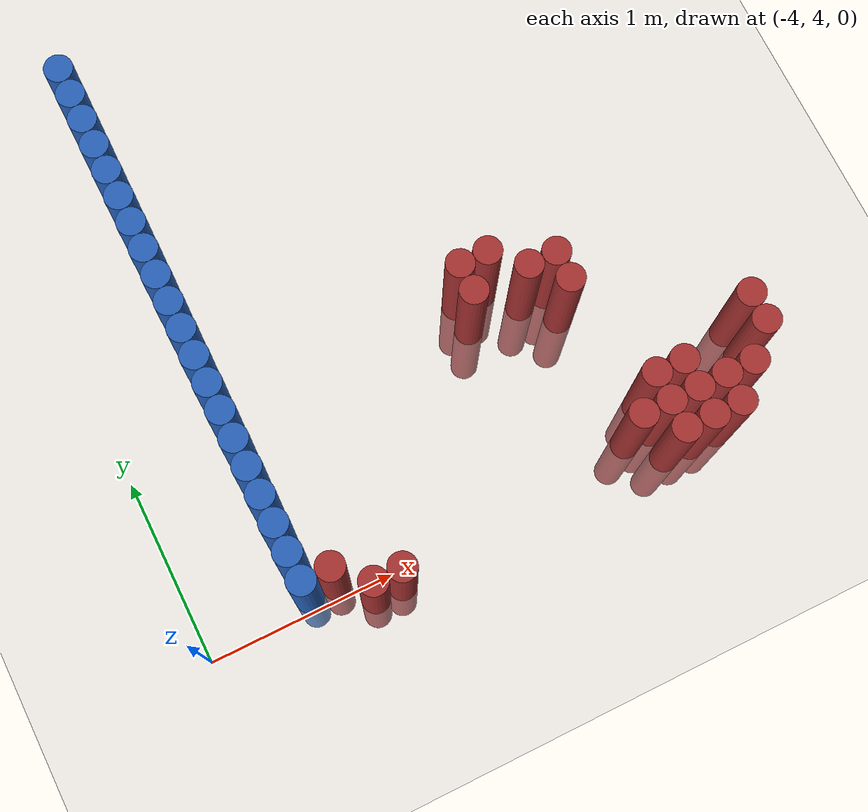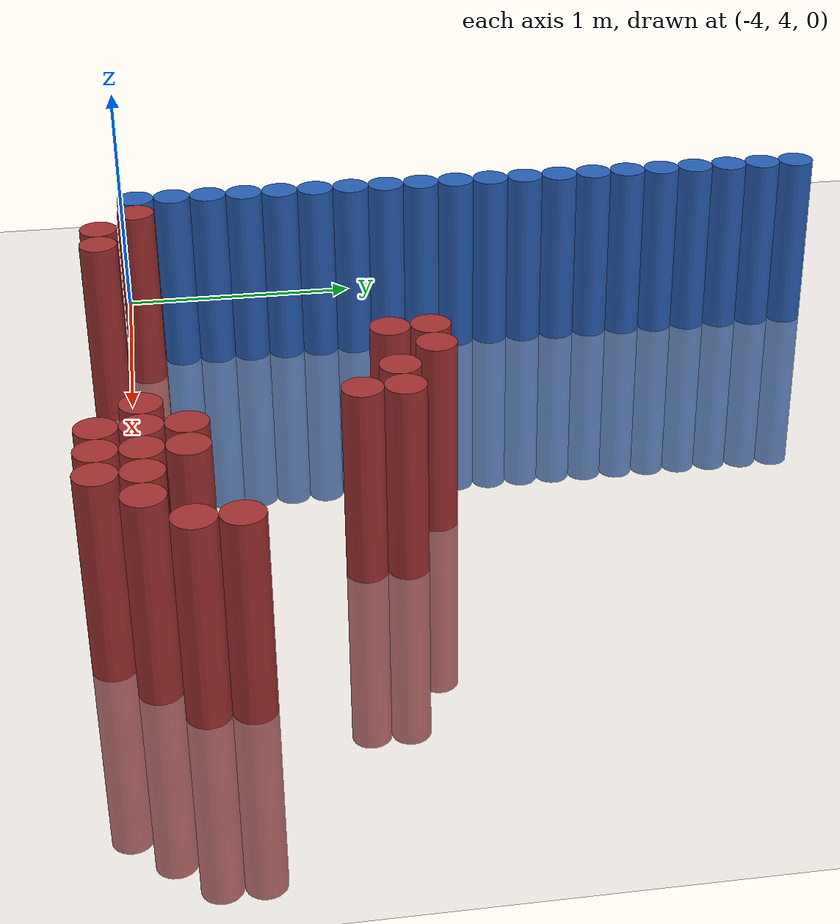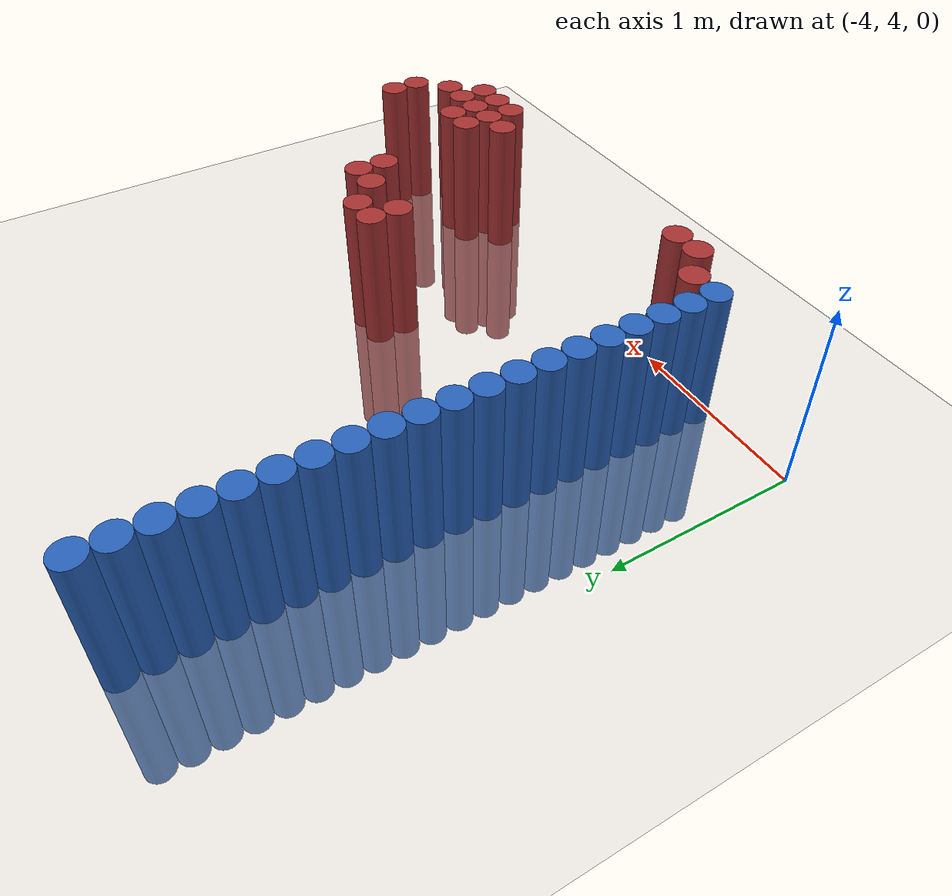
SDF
<sdf version="1.6">
 <world name="default">
  <model name="ground_plane">
   <static>1</static>
   <link name="link">
    <collision name="collision">
     <geometry><plane><normal>0 0 1</normal><size>100 100</size></plane></geometry>
     <surface><friction><ode><mu>100</mu><mu2>50</mu2></ode></friction></surface>
    </collision>
    <visual name="visual">
     <cast_shadows>0</cast_shadows>
     <geometry><plane><normal>0 0 1</normal><size>100 100</size></plane></geometry>
     <material>
      <script><uri>file://media/materials/scripts/gazebo.material</uri><name>Gazebo/Grey</name></script>
     </material>
    </visual>
   </link>
  </model>
  <model name="unit_cylinder_169">
   <static>1</static>
   <pose>-3.425000 4.075000 0.000000 0.000000 0.000000 0.000000</pose>
   <link name="link">
    <inertial>
     <mass>1</mass>
     <inertia><ixx>0.145833</ixx><ixy>0</ixy><ixz>0</ixz><iyy>0.145833</iyy><iyz>0</iyz><izz>0.125</izz></inertia>
    </inertial>
    <collision name="collision">
     <geometry><cylinder><radius>0.075000</radius><length>1.5</length></cylinder></geometry>
    </collision>
    <visual name="visual">
     <geometry><cylinder><radius>0.075000</radius><length>1.5</length></cylinder></geometry>
     <material>
      <ambient>0.152000 0.379000 0.720000 1</ambient>
      <diffuse>0.152000 0.379000 0.720000 1</diffuse>
     </material>
     <material>
      <script><name>Gazebo/Grey</name><uri>file://media/materials/scripts/gazebo.material</uri></script>
     </material>
    </visual>
   </link>
  </model>
  <model name="unit_cylinder_171">
   <static>1</static>
   <pose>-3.425000 4.225000 0.000000 0.000000 0.000000 0.000000</pose>
   <link name="link">
    <inertial>
     <mass>1</mass>
     <inertia><ixx>0.145833</ixx><ixy>0</ixy><ixz>0</ixz><iyy>0.145833</iyy><iyz>0</iyz><izz>0.125</izz></inertia>
    </inertial>
    <collision name="collision">
     <geometry><cylinder><radius>0.075000</radius><length>1.5</length></cylinder></geometry>
    </collision>
    <visual name="visual">
     <geometry><cylinder><radius>0.075000</radius><length>1.5</length></cylinder></geometry>
     <material>
      <ambient>0.152000 0.379000 0.720000 1</ambient>
      <diffuse>0.152000 0.379000 0.720000 1</diffuse>
     </material>
     <material>
      <script><name>Gazebo/Grey</name><uri>file://media/materials/scripts/gazebo.material</uri></script>
     </material>
    </visual>
   </link>
  </model>
  <model name="unit_cylinder_173">
   <static>1</static>
   <pose>-3.425000 4.375000 0.000000 0.000000 0.000000 0.000000</pose>
   <link name="link">
    <inertial>
     <mass>1</mass>
     <inertia><ixx>0.145833</ixx><ixy>0</ixy><ixz>0</ixz><iyy>0.145833</iyy><iyz>0</iyz><izz>0.125</izz></inertia>
    </inertial>
    <collision name="collision">
     <geometry><cylinder><radius>0.075000</radius><length>1.5</length></cylinder></geometry>
    </collision>
    <visual name="visual">
     <geometry><cylinder><radius>0.075000</radius><length>1.5</length></cylinder></geometry>
     <material>
      <ambient>0.152000 0.379000 0.720000 1</ambient>
      <diffuse>0.152000 0.379000 0.720000 1</diffuse>
     </material>
     <material>
      <script><name>Gazebo/Grey</name><uri>file://media/materials/scripts/gazebo.material</uri></script>
     </material>
    </visual>
   </link>
  </model>
  <model name="unit_cylinder_175">
   <static>1</static>
   <pose>-3.425000 4.525000 0.000000 0.000000 0.000000 0.000000</pose>
   <link name="link">
    <inertial>
     <mass>1</mass>
     <inertia><ixx>0.145833</ixx><ixy>0</ixy><ixz>0</ixz><iyy>0.145833</iyy><iyz>0</iyz><izz>0.125</izz></inertia>
    </inertial>
    <collision name="collision">
     <geometry><cylinder><radius>0.075000</radius><length>1.5</length></cylinder></geometry>
    </collision>
    <visual name="visual">
     <geometry><cylinder><radius>0.075000</radius><length>1.5</length></cylinder></geometry>
     <material>
      <ambient>0.152000 0.379000 0.720000 1</ambient>
      <diffuse>0.152000 0.379000 0.720000 1</diffuse>
     </material>
     <material>
      <script><name>Gazebo/Grey</name><uri>file://media/materials/scripts/gazebo.material</uri></script>
     </material>
    </visual>
   </link>
  </model>
  <model name="unit_cylinder_177">
   <static>1</static>
   <pose>-3.425000 4.675000 0.000000 0.000000 0.000000 0.000000</pose>
   <link name="link">
    <inertial>
     <mass>1</mass>
     <inertia><ixx>0.145833</ixx><ixy>0</ixy><ixz>0</ixz><iyy>0.145833</iyy><iyz>0</iyz><izz>0.125</izz></inertia>
    </inertial>
    <collision name="collision">
     <geometry><cylinder><radius>0.075000</radius><length>1.5</length></cylinder></geometry>
    </collision>
    <visual name="visual">
     <geometry><cylinder><radius>0.075000</radius><length>1.5</length></cylinder></geometry>
     <material>
      <ambient>0.152000 0.379000 0.720000 1</ambient>
      <diffuse>0.152000 0.379000 0.720000 1</diffuse>
     </material>
     <material>
      <script><name>Gazebo/Grey</name><uri>file://media/materials/scripts/gazebo.material</uri></script>
     </material>
    </visual>
   </link>
  </model>
  <model name="unit_cylinder_179">
   <static>1</static>
   <pose>-3.425000 4.825000 0.000000 0.000000 0.000000 0.000000</pose>
   <link name="link">
    <inertial>
     <mass>1</mass>
     <inertia><ixx>0.145833</ixx><ixy>0</ixy><ixz>0</ixz><iyy>0.145833</iyy><iyz>0</iyz><izz>0.125</izz></inertia>
    </inertial>
    <collision name="collision">
     <geometry><cylinder><radius>0.075000</radius><length>1.5</length></cylinder></geometry>
    </collision>
    <visual name="visual">
     <geometry><cylinder><radius>0.075000</radius><length>1.5</length></cylinder></geometry>
     <material>
      <ambient>0.152000 0.379000 0.720000 1</ambient>
      <diffuse>0.152000 0.379000 0.720000 1</diffuse>
     </material>
     <material>
      <script><name>Gazebo/Grey</name><uri>file://media/materials/scripts/gazebo.material</uri></script>
     </material>
    </visual>
   </link>
  </model>
  <model name="unit_cylinder_181">
   <static>1</static>
   <pose>-3.425000 4.975000 0.000000 0.000000 0.000000 0.000000</pose>
   <link name="link">
    <inertial>
     <mass>1</mass>
     <inertia><ixx>0.145833</ixx><ixy>0</ixy><ixz>0</ixz><iyy>0.145833</iyy><iyz>0</iyz><izz>0.125</izz></inertia>
    </inertial>
    <collision name="collision">
     <geometry><cylinder><radius>0.075000</radius><length>1.5</length></cylinder></geometry>
    </collision>
    <visual name="visual">
     <geometry><cylinder><radius>0.075000</radius><length>1.5</length></cylinder></geometry>
     <material>
      <ambient>0.152000 0.379000 0.720000 1</ambient>
      <diffuse>0.152000 0.379000 0.720000 1</diffuse>
     </material>
     <material>
      <script><name>Gazebo/Grey</name><uri>file://media/materials/scripts/gazebo.material</uri></script>
     </material>
    </visual>
   </link>
  </model>
  <model name="unit_cylinder_183">
   <static>1</static>
   <pose>-3.425000 5.125000 0.000000 0.000000 0.000000 0.000000</pose>
   <link name="link">
    <inertial>
     <mass>1</mass>
     <inertia><ixx>0.145833</ixx><ixy>0</ixy><ixz>0</ixz><iyy>0.145833</iyy><iyz>0</iyz><izz>0.125</izz></inertia>
    </inertial>
    <collision name="collision">
     <geometry><cylinder><radius>0.075000</radius><length>1.5</length></cylinder></geometry>
    </collision>
    <visual name="visual">
     <geometry><cylinder><radius>0.075000</radius><length>1.5</length></cylinder></geometry>
     <material>
      <ambient>0.152000 0.379000 0.720000 1</ambient>
      <diffuse>0.152000 0.379000 0.720000 1</diffuse>
     </material>
     <material>
      <script><name>Gazebo/Grey</name><uri>file://media/materials/scripts/gazebo.material</uri></script>
     </material>
    </visual>
   </link>
  </model>
  <model name="unit_cylinder_185">
   <static>1</static>
   <pose>-3.425000 5.275000 0.000000 0.000000 0.000000 0.000000</pose>
   <link name="link">
    <inertial>
     <mass>1</mass>
     <inertia><ixx>0.145833</ixx><ixy>0</ixy><ixz>0</ixz><iyy>0.145833</iyy><iyz>0</iyz><izz>0.125</izz></inertia>
    </inertial>
    <collision name="collision">
     <geometry><cylinder><radius>0.075000</radius><length>1.5</length></cylinder></geometry>
    </collision>
    <visual name="visual">
     <geometry><cylinder><radius>0.075000</radius><length>1.5</length></cylinder></geometry>
     <material>
      <ambient>0.152000 0.379000 0.720000 1</ambient>
      <diffuse>0.152000 0.379000 0.720000 1</diffuse>
     </material>
     <material>
      <script><name>Gazebo/Grey</name><uri>file://media/materials/scripts/gazebo.material</uri></script>
     </material>
    </visual>
   </link>
  </model>
  <model name="unit_cylinder_187">
   <static>1</static>
   <pose>-3.425000 5.425000 0.000000 0.000000 0.000000 0.000000</pose>
   <link name="link">
    <inertial>
     <mass>1</mass>
     <inertia><ixx>0.145833</ixx><ixy>0</ixy><ixz>0</ixz><iyy>0.145833</iyy><iyz>0</iyz><izz>0.125</izz></inertia>
    </inertial>
    <collision name="collision">
     <geometry><cylinder><radius>0.075000</radius><length>1.5</length></cylinder></geometry>
    </collision>
    <visual name="visual">
     <geometry><cylinder><radius>0.075000</radius><length>1.5</length></cylinder></geometry>
     <material>
      <ambient>0.152000 0.379000 0.720000 1</ambient>
      <diffuse>0.152000 0.379000 0.720000 1</diffuse>
     </material>
     <material>
      <script><name>Gazebo/Grey</name><uri>file://media/materials/scripts/gazebo.material</uri></script>
     </material>
    </visual>
   </link>
  </model>
  <model name="unit_cylinder_189">
   <static>1</static>
   <pose>-3.425000 5.575000 0.000000 0.000000 0.000000 0.000000</pose>
   <link name="link">
    <inertial>
     <mass>1</mass>
     <inertia><ixx>0.145833</ixx><ixy>0</ixy><ixz>0</ixz><iyy>0.145833</iyy><iyz>0</iyz><izz>0.125</izz></inertia>
    </inertial>
    <collision name="collision">
     <geometry><cylinder><radius>0.075000</radius><length>1.5</length></cylinder></geometry>
    </collision>
    <visual name="visual">
     <geometry><cylinder><radius>0.075000</radius><length>1.5</length></cylinder></geometry>
     <material>
      <ambient>0.152000 0.379000 0.720000 1</ambient>
      <diffuse>0.152000 0.379000 0.720000 1</diffuse>
     </material>
     <material>
      <script><name>Gazebo/Grey</name><uri>file://media/materials/scripts/gazebo.material</uri></script>
     </material>
    </visual>
   </link>
  </model>
  <model name="unit_cylinder_191">
   <static>1</static>
   <pose>-3.425000 5.725000 0.000000 0.000000 0.000000 0.000000</pose>
   <link name="link">
    <inertial>
     <mass>1</mass>
     <inertia><ixx>0.145833</ixx><ixy>0</ixy><ixz>0</ixz><iyy>0.145833</iyy><iyz>0</iyz><izz>0.125</izz></inertia>
    </inertial>
    <collision name="collision">
     <geometry><cylinder><radius>0.075000</radius><length>1.5</length></cylinder></geometry>
    </collision>
    <visual name="visual">
     <geometry><cylinder><radius>0.075000</radius><length>1.5</length></cylinder></geometry>
     <material>
      <ambient>0.152000 0.379000 0.720000 1</ambient>
      <diffuse>0.152000 0.379000 0.720000 1</diffuse>
     </material>
     <material>
      <script><name>Gazebo/Grey</name><uri>file://media/materials/scripts/gazebo.material</uri></script>
     </material>
    </visual>
   </link>
  </model>
  <model name="unit_cylinder_193">
   <static>1</static>
   <pose>-3.425000 5.875000 0.000000 0.000000 0.000000 0.000000</pose>
   <link name="link">
    <inertial>
     <mass>1</mass>
     <inertia><ixx>0.145833</ixx><ixy>0</ixy><ixz>0</ixz><iyy>0.145833</iyy><iyz>0</iyz><izz>0.125</izz></inertia>
    </inertial>
    <collision name="collision">
     <geometry><cylinder><radius>0.075000</radius><length>1.5</length></cylinder></geometry>
    </collision>
    <visual name="visual">
     <geometry><cylinder><radius>0.075000</radius><length>1.5</length></cylinder></geometry>
     <material>
      <ambient>0.152000 0.379000 0.720000 1</ambient>
      <diffuse>0.152000 0.379000 0.720000 1</diffuse>
     </material>
     <material>
      <script><name>Gazebo/Grey</name><uri>file://media/materials/scripts/gazebo.material</uri></script>
     </material>
    </visual>
   </link>
  </model>
  <model name="unit_cylinder_195">
   <static>1</static>
   <pose>-3.425000 6.025000 0.000000 0.000000 0.000000 0.000000</pose>
   <link name="link">
    <inertial>
     <mass>1</mass>
     <inertia><ixx>0.145833</ixx><ixy>0</ixy><ixz>0</ixz><iyy>0.145833</iyy><iyz>0</iyz><izz>0.125</izz></inertia>
    </inertial>
    <collision name="collision">
     <geometry><cylinder><radius>0.075000</radius><length>1.5</length></cylinder></geometry>
    </collision>
    <visual name="visual">
     <geometry><cylinder><radius>0.075000</radius><length>1.5</length></cylinder></geometry>
     <material>
      <ambient>0.152000 0.379000 0.720000 1</ambient>
      <diffuse>0.152000 0.379000 0.720000 1</diffuse>
     </material>
     <material>
      <script><name>Gazebo/Grey</name><uri>file://media/materials/scripts/gazebo.material</uri></script>
     </material>
    </visual>
   </link>
  </model>
  <model name="unit_cylinder_197">
   <static>1</static>
   <pose>-3.425000 6.175000 0.000000 0.000000 0.000000 0.000000</pose>
   <link name="link">
    <inertial>
     <mass>1</mass>
     <inertia><ixx>0.145833</ixx><ixy>0</ixy><ixz>0</ixz><iyy>0.145833</iyy><iyz>0</iyz><izz>0.125</izz></inertia>
    </inertial>
    <collision name="collision">
     <geometry><cylinder><radius>0.075000</radius><length>1.5</length></cylinder></geometry>
    </collision>
    <visual name="visual">
     <geometry><cylinder><radius>0.075000</radius><length>1.5</length></cylinder></geometry>
     <material>
      <ambient>0.152000 0.379000 0.720000 1</ambient>
      <diffuse>0.152000 0.379000 0.720000 1</diffuse>
     </material>
     <material>
      <script><name>Gazebo/Grey</name><uri>file://media/materials/scripts/gazebo.material</uri></script>
     </material>
    </visual>
   </link>
  </model>
  <model name="unit_cylinder_199">
   <static>1</static>
   <pose>-3.425000 6.325000 0.000000 0.000000 0.000000 0.000000</pose>
   <link name="link">
    <inertial>
     <mass>1</mass>
     <inertia><ixx>0.145833</ixx><ixy>0</ixy><ixz>0</ixz><iyy>0.145833</iyy><iyz>0</iyz><izz>0.125</izz></inertia>
    </inertial>
    <collision name="collision">
     <geometry><cylinder><radius>0.075000</radius><length>1.5</length></cylinder></geometry>
    </collision>
    <visual name="visual">
     <geometry><cylinder><radius>0.075000</radius><length>1.5</length></cylinder></geometry>
     <material>
      <ambient>0.152000 0.379000 0.720000 1</ambient>
      <diffuse>0.152000 0.379000 0.720000 1</diffuse>
     </material>
     <material>
      <script><name>Gazebo/Grey</name><uri>file://media/materials/scripts/gazebo.material</uri></script>
     </material>
    </visual>
   </link>
  </model>
  <model name="unit_cylinder_201">
   <static>1</static>
   <pose>-3.425000 6.475000 0.000000 0.000000 0.000000 0.000000</pose>
   <link name="link">
    <inertial>
     <mass>1</mass>
     <inertia><ixx>0.145833</ixx><ixy>0</ixy><ixz>0</ixz><iyy>0.145833</iyy><iyz>0</iyz><izz>0.125</izz></inertia>
    </inertial>
    <collision name="collision">
     <geometry><cylinder><radius>0.075000</radius><length>1.5</length></cylinder></geometry>
    </collision>
    <visual name="visual">
     <geometry><cylinder><radius>0.075000</radius><length>1.5</length></cylinder></geometry>
     <material>
      <ambient>0.152000 0.379000 0.720000 1</ambient>
      <diffuse>0.152000 0.379000 0.720000 1</diffuse>
     </material>
     <material>
      <script><name>Gazebo/Grey</name><uri>file://media/materials/scripts/gazebo.material</uri></script>
     </material>
    </visual>
   </link>
  </model>
  <model name="unit_cylinder_203">
   <static>1</static>
   <pose>-3.425000 6.625000 0.000000 0.000000 0.000000 0.000000</pose>
   <link name="link">
    <inertial>
     <mass>1</mass>
     <inertia><ixx>0.145833</ixx><ixy>0</ixy><ixz>0</ixz><iyy>0.145833</iyy><iyz>0</iyz><izz>0.125</izz></inertia>
    </inertial>
    <collision name="collision">
     <geometry><cylinder><radius>0.075000</radius><length>1.5</length></cylinder></geometry>
    </collision>
    <visual name="visual">
     <geometry><cylinder><radius>0.075000</radius><length>1.5</length></cylinder></geometry>
     <material>
      <ambient>0.152000 0.379000 0.720000 1</ambient>
      <diffuse>0.152000 0.379000 0.720000 1</diffuse>
     </material>
     <material>
      <script><name>Gazebo/Grey</name><uri>file://media/materials/scripts/gazebo.material</uri></script>
     </material>
    </visual>
   </link>
  </model>
  <model name="unit_cylinder_205">
   <static>1</static>
   <pose>-3.425000 6.775000 0.000000 0.000000 0.000000 0.000000</pose>
   <link name="link">
    <inertial>
     <mass>1</mass>
     <inertia><ixx>0.145833</ixx><ixy>0</ixy><ixz>0</ixz><iyy>0.145833</iyy><iyz>0</iyz><izz>0.125</izz></inertia>
    </inertial>
    <collision name="collision">
     <geometry><cylinder><radius>0.075000</radius><length>1.5</length></cylinder></geometry>
    </collision>
    <visual name="visual">
     <geometry><cylinder><radius>0.075000</radius><length>1.5</length></cylinder></geometry>
     <material>
      <ambient>0.152000 0.379000 0.720000 1</ambient>
      <diffuse>0.152000 0.379000 0.720000 1</diffuse>
     </material>
     <material>
      <script><name>Gazebo/Grey</name><uri>file://media/materials/scripts/gazebo.material</uri></script>
     </material>
    </visual>
   </link>
  </model>
  <model name="unit_cylinder_207">
   <static>1</static>
   <pose>-3.425000 6.925000 0.000000 0.000000 0.000000 0.000000</pose>
   <link name="link">
    <inertial>
     <mass>1</mass>
     <inertia><ixx>0.145833</ixx><ixy>0</ixy><ixz>0</ixz><iyy>0.145833</iyy><iyz>0</iyz><izz>0.125</izz></inertia>
    </inertial>
    <collision name="collision">
     <geometry><cylinder><radius>0.075000</radius><length>1.5</length></cylinder></geometry>
    </collision>
    <visual name="visual">
     <geometry><cylinder><radius>0.075000</radius><length>1.5</length></cylinder></geometry>
     <material>
      <ambient>0.152000 0.379000 0.720000 1</ambient>
      <diffuse>0.152000 0.379000 0.720000 1</diffuse>
     </material>
     <material>
      <script><name>Gazebo/Grey</name><uri>file://media/materials/scripts/gazebo.material</uri></script>
     </material>
    </visual>
   </link>
  </model>
  <model name="unit_cylinder_248">
   <static>1</static>
   <pose>-3.425000 4.075000 0.000000 0.000000 0.000000 0.000000</pose>
   <link name="link">
    <inertial>
     <mass>1</mass>
     <inertia><ixx>0.145833</ixx><ixy>0</ixy><ixz>0</ixz><iyy>0.145833</iyy><iyz>0</iyz><izz>0.125</izz></inertia>
    </inertial>
    <collision name="collision">
     <geometry><cylinder><radius>0.075000</radius><length>1.5</length></cylinder></geometry>
    </collision>
    <visual name="visual">
     <geometry><cylinder><radius>0.075000</radius><length>1.5</length></cylinder></geometry>
     <material>
      <ambient>0.152000 0.379000 0.720000 1</ambient>
      <diffuse>0.152000 0.379000 0.720000 1</diffuse>
     </material>
     <material>
      <script><name>Gazebo/Grey</name><uri>file://media/materials/scripts/gazebo.material</uri></script>
     </material>
    </visual>
   </link>
  </model>
  <model name="unit_cylinder_249">
   <static>1</static>
   <pose>-3.425000 4.225000 0.000000 0.000000 0.000000 0.000000</pose>
   <link name="link">
    <inertial>
     <mass>1</mass>
     <inertia><ixx>0.145833</ixx><ixy>0</ixy><ixz>0</ixz><iyy>0.145833</iyy><iyz>0</iyz><izz>0.125</izz></inertia>
    </inertial>
    <collision name="collision">
     <geometry><cylinder><radius>0.075000</radius><length>1.5</length></cylinder></geometry>
    </collision>
    <visual name="visual">
     <geometry><cylinder><radius>0.075000</radius><length>1.5</length></cylinder></geometry>
     <material>
      <ambient>0.152000 0.379000 0.720000 1</ambient>
      <diffuse>0.152000 0.379000 0.720000 1</diffuse>
     </material>
     <material>
      <script><name>Gazebo/Grey</name><uri>file://media/materials/scripts/gazebo.material</uri></script>
     </material>
    </visual>
   </link>
  </model>
  <model name="unit_cylinder_250">
   <static>1</static>
   <pose>-3.425000 4.375000 0.000000 0.000000 0.000000 0.000000</pose>
   <link name="link">
    <inertial>
     <mass>1</mass>
     <inertia><ixx>0.145833</ixx><ixy>0</ixy><ixz>0</ixz><iyy>0.145833</iyy><iyz>0</iyz><izz>0.125</izz></inertia>
    </inertial>
    <collision name="collision">
     <geometry><cylinder><radius>0.075000</radius><length>1.5</length></cylinder></geometry>
    </collision>
    <visual name="visual">
     <geometry><cylinder><radius>0.075000</radius><length>1.5</length></cylinder></geometry>
     <material>
      <ambient>0.152000 0.379000 0.720000 1</ambient>
      <diffuse>0.152000 0.379000 0.720000 1</diffuse>
     </material>
     <material>
      <script><name>Gazebo/Grey</name><uri>file://media/materials/scripts/gazebo.material</uri></script>
     </material>
    </visual>
   </link>
  </model>
  <model name="unit_cylinder_251">
   <static>1</static>
   <pose>-3.425000 4.525000 0.000000 0.000000 0.000000 0.000000</pose>
   <link name="link">
    <inertial>
     <mass>1</mass>
     <inertia><ixx>0.145833</ixx><ixy>0</ixy><ixz>0</ixz><iyy>0.145833</iyy><iyz>0</iyz><izz>0.125</izz></inertia>
    </inertial>
    <collision name="collision">
     <geometry><cylinder><radius>0.075000</radius><length>1.5</length></cylinder></geometry>
    </collision>
    <visual name="visual">
     <geometry><cylinder><radius>0.075000</radius><length>1.5</length></cylinder></geometry>
     <material>
      <ambient>0.152000 0.379000 0.720000 1</ambient>
      <diffuse>0.152000 0.379000 0.720000 1</diffuse>
     </material>
     <material>
      <script><name>Gazebo/Grey</name><uri>file://media/materials/scripts/gazebo.material</uri></script>
     </material>
    </visual>
   </link>
  </model>
  <model name="unit_cylinder_252">
   <static>1</static>
   <pose>-3.425000 4.675000 0.000000 0.000000 0.000000 0.000000</pose>
   <link name="link">
    <inertial>
     <mass>1</mass>
     <inertia><ixx>0.145833</ixx><ixy>0</ixy><ixz>0</ixz><iyy>0.145833</iyy><iyz>0</iyz><izz>0.125</izz></inertia>
    </inertial>
    <collision name="collision">
     <geometry><cylinder><radius>0.075000</radius><length>1.5</length></cylinder></geometry>
    </collision>
    <visual name="visual">
     <geometry><cylinder><radius>0.075000</radius><length>1.5</length></cylinder></geometry>
     <material>
      <ambient>0.152000 0.379000 0.720000 1</ambient>
      <diffuse>0.152000 0.379000 0.720000 1</diffuse>
     </material>
     <material>
      <script><name>Gazebo/Grey</name><uri>file://media/materials/scripts/gazebo.material</uri></script>
     </material>
    </visual>
   </link>
  </model>
  <model name="unit_cylinder_253">
   <static>1</static>
   <pose>-3.425000 4.825000 0.000000 0.000000 0.000000 0.000000</pose>
   <link name="link">
    <inertial>
     <mass>1</mass>
     <inertia><ixx>0.145833</ixx><ixy>0</ixy><ixz>0</ixz><iyy>0.145833</iyy><iyz>0</iyz><izz>0.125</izz></inertia>
    </inertial>
    <collision name="collision">
     <geometry><cylinder><radius>0.075000</radius><length>1.5</length></cylinder></geometry>
    </collision>
    <visual name="visual">
     <geometry><cylinder><radius>0.075000</radius><length>1.5</length></cylinder></geometry>
     <material>
      <ambient>0.152000 0.379000 0.720000 1</ambient>
      <diffuse>0.152000 0.379000 0.720000 1</diffuse>
     </material>
     <material>
      <script><name>Gazebo/Grey</name><uri>file://media/materials/scripts/gazebo.material</uri></script>
     </material>
    </visual>
   </link>
  </model>
  <model name="unit_cylinder_254">
   <static>1</static>
   <pose>-3.425000 4.975000 0.000000 0.000000 0.000000 0.000000</pose>
   <link name="link">
    <inertial>
     <mass>1</mass>
     <inertia><ixx>0.145833</ixx><ixy>0</ixy><ixz>0</ixz><iyy>0.145833</iyy><iyz>0</iyz><izz>0.125</izz></inertia>
    </inertial>
    <collision name="collision">
     <geometry><cylinder><radius>0.075000</radius><length>1.5</length></cylinder></geometry>
    </collision>
    <visual name="visual">
     <geometry><cylinder><radius>0.075000</radius><length>1.5</length></cylinder></geometry>
     <material>
      <ambient>0.152000 0.379000 0.720000 1</ambient>
      <diffuse>0.152000 0.379000 0.720000 1</diffuse>
     </material>
     <material>
      <script><name>Gazebo/Grey</name><uri>file://media/materials/scripts/gazebo.material</uri></script>
     </material>
    </visual>
   </link>
  </model>
  <model name="unit_cylinder_255">
   <static>1</static>
   <pose>-3.425000 5.125000 0.000000 0.000000 0.000000 0.000000</pose>
   <link name="link">
    <inertial>
     <mass>1</mass>
     <inertia><ixx>0.145833</ixx><ixy>0</ixy><ixz>0</ixz><iyy>0.145833</iyy><iyz>0</iyz><izz>0.125</izz></inertia>
    </inertial>
    <collision name="collision">
     <geometry><cylinder><radius>0.075000</radius><length>1.5</length></cylinder></geometry>
    </collision>
    <visual name="visual">
     <geometry><cylinder><radius>0.075000</radius><length>1.5</length></cylinder></geometry>
     <material>
      <ambient>0.152000 0.379000 0.720000 1</ambient>
      <diffuse>0.152000 0.379000 0.720000 1</diffuse>
     </material>
     <material>
      <script><name>Gazebo/Grey</name><uri>file://media/materials/scripts/gazebo.material</uri></script>
     </material>
    </visual>
   </link>
  </model>
  <model name="unit_cylinder_256">
   <static>1</static>
   <pose>-3.425000 5.275000 0.000000 0.000000 0.000000 0.000000</pose>
   <link name="link">
    <inertial>
     <mass>1</mass>
     <inertia><ixx>0.145833</ixx><ixy>0</ixy><ixz>0</ixz><iyy>0.145833</iyy><iyz>0</iyz><izz>0.125</izz></inertia>
    </inertial>
    <collision name="collision">
     <geometry><cylinder><radius>0.075000</radius><length>1.5</length></cylinder></geometry>
    </collision>
    <visual name="visual">
     <geometry><cylinder><radius>0.075000</radius><length>1.5</length></cylinder></geometry>
     <material>
      <ambient>0.152000 0.379000 0.720000 1</ambient>
      <diffuse>0.152000 0.379000 0.720000 1</diffuse>
     </material>
     <material>
      <script><name>Gazebo/Grey</name><uri>file://media/materials/scripts/gazebo.material</uri></script>
     </material>
    </visual>
   </link>
  </model>
  <model name="unit_cylinder_257">
   <static>1</static>
   <pose>-3.425000 5.425000 0.000000 0.000000 0.000000 0.000000</pose>
   <link name="link">
    <inertial>
     <mass>1</mass>
     <inertia><ixx>0.145833</ixx><ixy>0</ixy><ixz>0</ixz><iyy>0.145833</iyy><iyz>0</iyz><izz>0.125</izz></inertia>
    </inertial>
    <collision name="collision">
     <geometry><cylinder><radius>0.075000</radius><length>1.5</length></cylinder></geometry>
    </collision>
    <visual name="visual">
     <geometry><cylinder><radius>0.075000</radius><length>1.5</length></cylinder></geometry>
     <material>
      <ambient>0.152000 0.379000 0.720000 1</ambient>
      <diffuse>0.152000 0.379000 0.720000 1</diffuse>
     </material>
     <material>
      <script><name>Gazebo/Grey</name><uri>file://media/materials/scripts/gazebo.material</uri></script>
     </material>
    </visual>
   </link>
  </model>
  <model name="unit_cylinder_281">
   <static>1</static>
   <pose>-3.275000 4.075000 0.000000 0.000000 0.000000 0.000000</pose>
   <link name="link">
    <inertial>
     <mass>1</mass>
     <inertia><ixx>0.145833</ixx><ixy>0</ixy><ixz>0</ixz><iyy>0.145833</iyy><iyz>0</iyz><izz>0.125</izz></inertia>
    </inertial>
    <collision name="collision">
     <geometry><cylinder><radius>0.075000</radius><length>1.5</length></cylinder></geometry>
    </collision>
    <visual name="visual">
     <geometry><cylinder><radius>0.075000</radius><length>1.5</length></cylinder></geometry>
     <material>
      <ambient>0.648000 0.192000 0.192000 1</ambient>
      <diffuse>0.648000 0.192000 0.192000 1</diffuse>
     </material>
     <material>
      <script><name>Gazebo/Grey</name><uri>file://media/materials/scripts/gazebo.material</uri></script>
     </material>
    </visual>
   </link>
  </model>
  <model name="unit_cylinder_291">
   <static>1</static>
   <pose>-3.125000 3.925000 0.000000 0.000000 0.000000 0.000000</pose>
   <link name="link">
    <inertial>
     <mass>1</mass>
     <inertia><ixx>0.145833</ixx><ixy>0</ixy><ixz>0</ixz><iyy>0.145833</iyy><iyz>0</iyz><izz>0.125</izz></inertia>
    </inertial>
    <collision name="collision">
     <geometry><cylinder><radius>0.075000</radius><length>1.5</length></cylinder></geometry>
    </collision>
    <visual name="visual">
     <geometry><cylinder><radius>0.075000</radius><length>1.5</length></cylinder></geometry>
     <material>
      <ambient>0.648000 0.192000 0.192000 1</ambient>
      <diffuse>0.648000 0.192000 0.192000 1</diffuse>
     </material>
     <material>
      <script><name>Gazebo/Grey</name><uri>file://media/materials/scripts/gazebo.material</uri></script>
     </material>
    </visual>
   </link>
  </model>
  <model name="unit_cylinder_299">
   <static>1</static>
   <pose>-2.975000 3.925000 0.000000 0.000000 0.000000 0.000000</pose>
   <link name="link">
    <inertial>
     <mass>1</mass>
     <inertia><ixx>0.145833</ixx><ixy>0</ixy><ixz>0</ixz><iyy>0.145833</iyy><iyz>0</iyz><izz>0.125</izz></inertia>
    </inertial>
    <collision name="collision">
     <geometry><cylinder><radius>0.075000</radius><length>1.5</length></cylinder></geometry>
    </collision>
    <visual name="visual">
     <geometry><cylinder><radius>0.075000</radius><length>1.5</length></cylinder></geometry>
     <material>
      <ambient>0.648000 0.192000 0.192000 1</ambient>
      <diffuse>0.648000 0.192000 0.192000 1</diffuse>
     </material>
     <material>
      <script><name>Gazebo/Grey</name><uri>file://media/materials/scripts/gazebo.material</uri></script>
     </material>
    </visual>
   </link>
  </model>
  <model name="unit_cylinder_335">
   <static>1</static>
   <pose>-2.075000 4.975000 0.000000 0.000000 0.000000 0.000000</pose>
   <link name="link">
    <inertial>
     <mass>1</mass>
     <inertia><ixx>0.145833</ixx><ixy>0</ixy><ixz>0</ixz><iyy>0.145833</iyy><iyz>0</iyz><izz>0.125</izz></inertia>
    </inertial>
    <collision name="collision">
     <geometry><cylinder><radius>0.075000</radius><length>1.5</length></cylinder></geometry>
    </collision>
    <visual name="visual">
     <geometry><cylinder><radius>0.075000</radius><length>1.5</length></cylinder></geometry>
     <material>
      <ambient>0.648000 0.192000 0.192000 1</ambient>
      <diffuse>0.648000 0.192000 0.192000 1</diffuse>
     </material>
     <material>
      <script><name>Gazebo/Grey</name><uri>file://media/materials/scripts/gazebo.material</uri></script>
     </material>
    </visual>
   </link>
  </model>
  <model name="unit_cylinder_336">
   <static>1</static>
   <pose>-2.075000 5.125000 0.000000 0.000000 0.000000 0.000000</pose>
   <link name="link">
    <inertial>
     <mass>1</mass>
     <inertia><ixx>0.145833</ixx><ixy>0</ixy><ixz>0</ixz><iyy>0.145833</iyy><iyz>0</iyz><izz>0.125</izz></inertia>
    </inertial>
    <collision name="collision">
     <geometry><cylinder><radius>0.075000</radius><length>1.5</length></cylinder></geometry>
    </collision>
    <visual name="visual">
     <geometry><cylinder><radius>0.075000</radius><length>1.5</length></cylinder></geometry>
     <material>
      <ambient>0.648000 0.192000 0.192000 1</ambient>
      <diffuse>0.648000 0.192000 0.192000 1</diffuse>
     </material>
     <material>
      <script><name>Gazebo/Grey</name><uri>file://media/materials/scripts/gazebo.material</uri></script>
     </material>
    </visual>
   </link>
  </model>
  <model name="unit_cylinder_341">
   <static>1</static>
   <pose>-1.925000 5.125000 0.000000 0.000000 0.000000 0.000000</pose>
   <link name="link">
    <inertial>
     <mass>1</mass>
     <inertia><ixx>0.145833</ixx><ixy>0</ixy><ixz>0</ixz><iyy>0.145833</iyy><iyz>0</iyz><izz>0.125</izz></inertia>
    </inertial>
    <collision name="collision">
     <geometry><cylinder><radius>0.075000</radius><length>1.5</length></cylinder></geometry>
    </collision>
    <visual name="visual">
     <geometry><cylinder><radius>0.075000</radius><length>1.5</length></cylinder></geometry>
     <material>
      <ambient>0.648000 0.192000 0.192000 1</ambient>
      <diffuse>0.648000 0.192000 0.192000 1</diffuse>
     </material>
     <material>
      <script><name>Gazebo/Grey</name><uri>file://media/materials/scripts/gazebo.material</uri></script>
     </material>
    </visual>
   </link>
  </model>
  <model name="unit_cylinder_348">
   <static>1</static>
   <pose>-1.775000 4.975000 0.000000 0.000000 0.000000 0.000000</pose>
   <link name="link">
    <inertial>
     <mass>1</mass>
     <inertia><ixx>0.145833</ixx><ixy>0</ixy><ixz>0</ixz><iyy>0.145833</iyy><iyz>0</iyz><izz>0.125</izz></inertia>
    </inertial>
    <collision name="collision">
     <geometry><cylinder><radius>0.075000</radius><length>1.5</length></cylinder></geometry>
    </collision>
    <visual name="visual">
     <geometry><cylinder><radius>0.075000</radius><length>1.5</length></cylinder></geometry>
     <material>
      <ambient>0.648000 0.192000 0.192000 1</ambient>
      <diffuse>0.648000 0.192000 0.192000 1</diffuse>
     </material>
     <material>
      <script><name>Gazebo/Grey</name><uri>file://media/materials/scripts/gazebo.material</uri></script>
     </material>
    </visual>
   </link>
  </model>
  <model name="unit_cylinder_353">
   <static>1</static>
   <pose>-1.625000 4.075000 0.000000 0.000000 0.000000 0.000000</pose>
   <link name="link">
    <inertial>
     <mass>1</mass>
     <inertia><ixx>0.145833</ixx><ixy>0</ixy><ixz>0</ixz><iyy>0.145833</iyy><iyz>0</iyz><izz>0.125</izz></inertia>
    </inertial>
    <collision name="collision">
     <geometry><cylinder><radius>0.075000</radius><length>1.5</length></cylinder></geometry>
    </collision>
    <visual name="visual">
     <geometry><cylinder><radius>0.075000</radius><length>1.5</length></cylinder></geometry>
     <material>
      <ambient>0.648000 0.192000 0.192000 1</ambient>
      <diffuse>0.648000 0.192000 0.192000 1</diffuse>
     </material>
     <material>
      <script><name>Gazebo/Grey</name><uri>file://media/materials/scripts/gazebo.material</uri></script>
     </material>
    </visual>
   </link>
  </model>
  <model name="unit_cylinder_354">
   <static>1</static>
   <pose>-1.625000 4.825000 0.000000 0.000000 0.000000 0.000000</pose>
   <link name="link">
    <inertial>
     <mass>1</mass>
     <inertia><ixx>0.145833</ixx><ixy>0</ixy><ixz>0</ixz><iyy>0.145833</iyy><iyz>0</iyz><izz>0.125</izz></inertia>
    </inertial>
    <collision name="collision">
     <geometry><cylinder><radius>0.075000</radius><length>1.5</length></cylinder></geometry>
    </collision>
    <visual name="visual">
     <geometry><cylinder><radius>0.075000</radius><length>1.5</length></cylinder></geometry>
     <material>
      <ambient>0.648000 0.192000 0.192000 1</ambient>
      <diffuse>0.648000 0.192000 0.192000 1</diffuse>
     </material>
     <material>
      <script><name>Gazebo/Grey</name><uri>file://media/materials/scripts/gazebo.material</uri></script>
     </material>
    </visual>
   </link>
  </model>
  <model name="unit_cylinder_355">
   <static>1</static>
   <pose>-1.625000 4.975000 0.000000 0.000000 0.000000 0.000000</pose>
   <link name="link">
    <inertial>
     <mass>1</mass>
     <inertia><ixx>0.145833</ixx><ixy>0</ixy><ixz>0</ixz><iyy>0.145833</iyy><iyz>0</iyz><izz>0.125</izz></inertia>
    </inertial>
    <collision name="collision">
     <geometry><cylinder><radius>0.075000</radius><length>1.5</length></cylinder></geometry>
    </collision>
    <visual name="visual">
     <geometry><cylinder><radius>0.075000</radius><length>1.5</length></cylinder></geometry>
     <material>
      <ambient>0.648000 0.192000 0.192000 1</ambient>
      <diffuse>0.648000 0.192000 0.192000 1</diffuse>
     </material>
     <material>
      <script><name>Gazebo/Grey</name><uri>file://media/materials/scripts/gazebo.material</uri></script>
     </material>
    </visual>
   </link>
  </model>
  <model name="unit_cylinder_362">
   <static>1</static>
   <pose>-1.475000 3.925000 0.000000 0.000000 0.000000 0.000000</pose>
   <link name="link">
    <inertial>
     <mass>1</mass>
     <inertia><ixx>0.145833</ixx><ixy>0</ixy><ixz>0</ixz><iyy>0.145833</iyy><iyz>0</iyz><izz>0.125</izz></inertia>
    </inertial>
    <collision name="collision">
     <geometry><cylinder><radius>0.075000</radius><length>1.5</length></cylinder></geometry>
    </collision>
    <visual name="visual">
     <geometry><cylinder><radius>0.075000</radius><length>1.5</length></cylinder></geometry>
     <material>
      <ambient>0.648000 0.192000 0.192000 1</ambient>
      <diffuse>0.648000 0.192000 0.192000 1</diffuse>
     </material>
     <material>
      <script><name>Gazebo/Grey</name><uri>file://media/materials/scripts/gazebo.material</uri></script>
     </material>
    </visual>
   </link>
  </model>
  <model name="unit_cylinder_363">
   <static>1</static>
   <pose>-1.475000 4.075000 0.000000 0.000000 0.000000 0.000000</pose>
   <link name="link">
    <inertial>
     <mass>1</mass>
     <inertia><ixx>0.145833</ixx><ixy>0</ixy><ixz>0</ixz><iyy>0.145833</iyy><iyz>0</iyz><izz>0.125</izz></inertia>
    </inertial>
    <collision name="collision">
     <geometry><cylinder><radius>0.075000</radius><length>1.5</length></cylinder></geometry>
    </collision>
    <visual name="visual">
     <geometry><cylinder><radius>0.075000</radius><length>1.5</length></cylinder></geometry>
     <material>
      <ambient>0.648000 0.192000 0.192000 1</ambient>
      <diffuse>0.648000 0.192000 0.192000 1</diffuse>
     </material>
     <material>
      <script><name>Gazebo/Grey</name><uri>file://media/materials/scripts/gazebo.material</uri></script>
     </material>
    </visual>
   </link>
  </model>
  <model name="unit_cylinder_364">
   <static>1</static>
   <pose>-1.475000 4.225000 0.000000 0.000000 0.000000 0.000000</pose>
   <link name="link">
    <inertial>
     <mass>1</mass>
     <inertia><ixx>0.145833</ixx><ixy>0</ixy><ixz>0</ixz><iyy>0.145833</iyy><iyz>0</iyz><izz>0.125</izz></inertia>
    </inertial>
    <collision name="collision">
     <geometry><cylinder><radius>0.075000</radius><length>1.5</length></cylinder></geometry>
    </collision>
    <visual name="visual">
     <geometry><cylinder><radius>0.075000</radius><length>1.5</length></cylinder></geometry>
     <material>
      <ambient>0.648000 0.192000 0.192000 1</ambient>
      <diffuse>0.648000 0.192000 0.192000 1</diffuse>
     </material>
     <material>
      <script><name>Gazebo/Grey</name><uri>file://media/materials/scripts/gazebo.material</uri></script>
     </material>
    </visual>
   </link>
  </model>
  <model name="unit_cylinder_372">
   <static>1</static>
   <pose>-1.325000 3.925000 0.000000 0.000000 0.000000 0.000000</pose>
   <link name="link">
    <inertial>
     <mass>1</mass>
     <inertia><ixx>0.145833</ixx><ixy>0</ixy><ixz>0</ixz><iyy>0.145833</iyy><iyz>0</iyz><izz>0.125</izz></inertia>
    </inertial>
    <collision name="collision">
     <geometry><cylinder><radius>0.075000</radius><length>1.5</length></cylinder></geometry>
    </collision>
    <visual name="visual">
     <geometry><cylinder><radius>0.075000</radius><length>1.5</length></cylinder></geometry>
     <material>
      <ambient>0.648000 0.192000 0.192000 1</ambient>
      <diffuse>0.648000 0.192000 0.192000 1</diffuse>
     </material>
     <material>
      <script><name>Gazebo/Grey</name><uri>file://media/materials/scripts/gazebo.material</uri></script>
     </material>
    </visual>
   </link>
  </model>
  <model name="unit_cylinder_373">
   <static>1</static>
   <pose>-1.325000 4.075000 0.000000 0.000000 0.000000 0.000000</pose>
   <link name="link">
    <inertial>
     <mass>1</mass>
     <inertia><ixx>0.145833</ixx><ixy>0</ixy><ixz>0</ixz><iyy>0.145833</iyy><iyz>0</iyz><izz>0.125</izz></inertia>
    </inertial>
    <collision name="collision">
     <geometry><cylinder><radius>0.075000</radius><length>1.5</length></cylinder></geometry>
    </collision>
    <visual name="visual">
     <geometry><cylinder><radius>0.075000</radius><length>1.5</length></cylinder></geometry>
     <material>
      <ambient>0.648000 0.192000 0.192000 1</ambient>
      <diffuse>0.648000 0.192000 0.192000 1</diffuse>
     </material>
     <material>
      <script><name>Gazebo/Grey</name><uri>file://media/materials/scripts/gazebo.material</uri></script>
     </material>
    </visual>
   </link>
  </model>
  <model name="unit_cylinder_374">
   <static>1</static>
   <pose>-1.325000 4.225000 0.000000 0.000000 0.000000 0.000000</pose>
   <link name="link">
    <inertial>
     <mass>1</mass>
     <inertia><ixx>0.145833</ixx><ixy>0</ixy><ixz>0</ixz><iyy>0.145833</iyy><iyz>0</iyz><izz>0.125</izz></inertia>
    </inertial>
    <collision name="collision">
     <geometry><cylinder><radius>0.075000</radius><length>1.5</length></cylinder></geometry>
    </collision>
    <visual name="visual">
     <geometry><cylinder><radius>0.075000</radius><length>1.5</length></cylinder></geometry>
     <material>
      <ambient>0.648000 0.192000 0.192000 1</ambient>
      <diffuse>0.648000 0.192000 0.192000 1</diffuse>
     </material>
     <material>
      <script><name>Gazebo/Grey</name><uri>file://media/materials/scripts/gazebo.material</uri></script>
     </material>
    </visual>
   </link>
  </model>
  <model name="unit_cylinder_382">
   <static>1</static>
   <pose>-1.175000 3.925000 0.000000 0.000000 0.000000 0.000000</pose>
   <link name="link">
    <inertial>
     <mass>1</mass>
     <inertia><ixx>0.145833</ixx><ixy>0</ixy><ixz>0</ixz><iyy>0.145833</iyy><iyz>0</iyz><izz>0.125</izz></inertia>
    </inertial>
    <collision name="collision">
     <geometry><cylinder><radius>0.075000</radius><length>1.5</length></cylinder></geometry>
    </collision>
    <visual name="visual">
     <geometry><cylinder><radius>0.075000</radius><length>1.5</length></cylinder></geometry>
     <material>
      <ambient>0.648000 0.192000 0.192000 1</ambient>
      <diffuse>0.648000 0.192000 0.192000 1</diffuse>
     </material>
     <material>
      <script><name>Gazebo/Grey</name><uri>file://media/materials/scripts/gazebo.material</uri></script>
     </material>
    </visual>
   </link>
  </model>
  <model name="unit_cylinder_383">
   <static>1</static>
   <pose>-1.175000 4.075000 0.000000 0.000000 0.000000 0.000000</pose>
   <link name="link">
    <inertial>
     <mass>1</mass>
     <inertia><ixx>0.145833</ixx><ixy>0</ixy><ixz>0</ixz><iyy>0.145833</iyy><iyz>0</iyz><izz>0.125</izz></inertia>
    </inertial>
    <collision name="collision">
     <geometry><cylinder><radius>0.075000</radius><length>1.5</length></cylinder></geometry>
    </collision>
    <visual name="visual">
     <geometry><cylinder><radius>0.075000</radius><length>1.5</length></cylinder></geometry>
     <material>
      <ambient>0.648000 0.192000 0.192000 1</ambient>
      <diffuse>0.648000 0.192000 0.192000 1</diffuse>
     </material>
     <material>
      <script><name>Gazebo/Grey</name><uri>file://media/materials/scripts/gazebo.material</uri></script>
     </material>
    </visual>
   </link>
  </model>
  <model name="unit_cylinder_391">
   <static>1</static>
   <pose>-1.025000 4.075000 0.000000 0.000000 0.000000 0.000000</pose>
   <link name="link">
    <inertial>
     <mass>1</mass>
     <inertia><ixx>0.145833</ixx><ixy>0</ixy><ixz>0</ixz><iyy>0.145833</iyy><iyz>0</iyz><izz>0.125</izz></inertia>
    </inertial>
    <collision name="collision">
     <geometry><cylinder><radius>0.075000</radius><length>1.5</length></cylinder></geometry>
    </collision>
    <visual name="visual">
     <geometry><cylinder><radius>0.075000</radius><length>1.5</length></cylinder></geometry>
     <material>
      <ambient>0.648000 0.192000 0.192000 1</ambient>
      <diffuse>0.648000 0.192000 0.192000 1</diffuse>
     </material>
     <material>
      <script><name>Gazebo/Grey</name><uri>file://media/materials/scripts/gazebo.material</uri></script>
     </material>
    </visual>
   </link>
  </model>
  <model name="unit_cylinder_396">
   <static>1</static>
   <pose>-0.875000 4.225000 0.000000 0.000000 0.000000 0.000000</pose>
   <link name="link">
    <inertial>
     <mass>1</mass>
     <inertia><ixx>0.145833</ixx><ixy>0</ixy><ixz>0</ixz><iyy>0.145833</iyy><iyz>0</iyz><izz>0.125</izz></inertia>
    </inertial>
    <collision name="collision">
     <geometry><cylinder><radius>0.075000</radius><length>1.5</length></cylinder></geometry>
    </collision>
    <visual name="visual">
     <geometry><cylinder><radius>0.075000</radius><length>1.5</length></cylinder></geometry>
     <material>
      <ambient>0.648000 0.192000 0.192000 1</ambient>
      <diffuse>0.648000 0.192000 0.192000 1</diffuse>
     </material>
     <material>
      <script><name>Gazebo/Grey</name><uri>file://media/materials/scripts/gazebo.material</uri></script>
     </material>
    </visual>
   </link>
  </model>
  <model name="unit_cylinder_397">
   <static>1</static>
   <pose>-0.875000 4.375000 0.000000 0.000000 0.000000 0.000000</pose>
   <link name="link">
    <inertial>
     <mass>1</mass>
     <inertia><ixx>0.145833</ixx><ixy>0</ixy><ixz>0</ixz><iyy>0.145833</iyy><iyz>0</iyz><izz>0.125</izz></inertia>
    </inertial>
    <collision name="collision">
     <geometry><cylinder><radius>0.075000</radius><length>1.5</length></cylinder></geometry>
    </collision>
    <visual name="visual">
     <geometry><cylinder><radius>0.075000</radius><length>1.5</length></cylinder></geometry>
     <material>
      <ambient>0.648000 0.192000 0.192000 1</ambient>
      <diffuse>0.648000 0.192000 0.192000 1</diffuse>
     </material>
     <material>
      <script><name>Gazebo/Grey</name><uri>file://media/materials/scripts/gazebo.material</uri></script>
     </material>
    </visual>
   </link>
  </model>
 </world>
</sdf>
